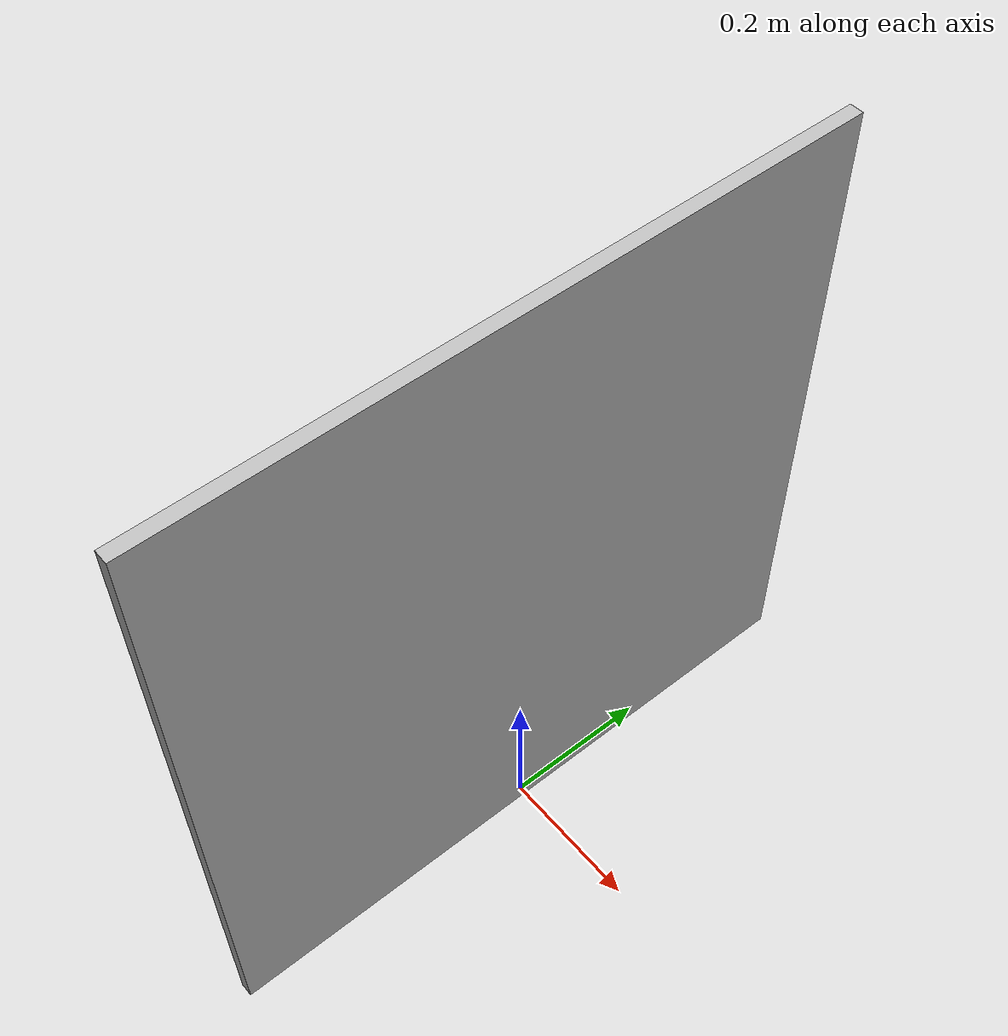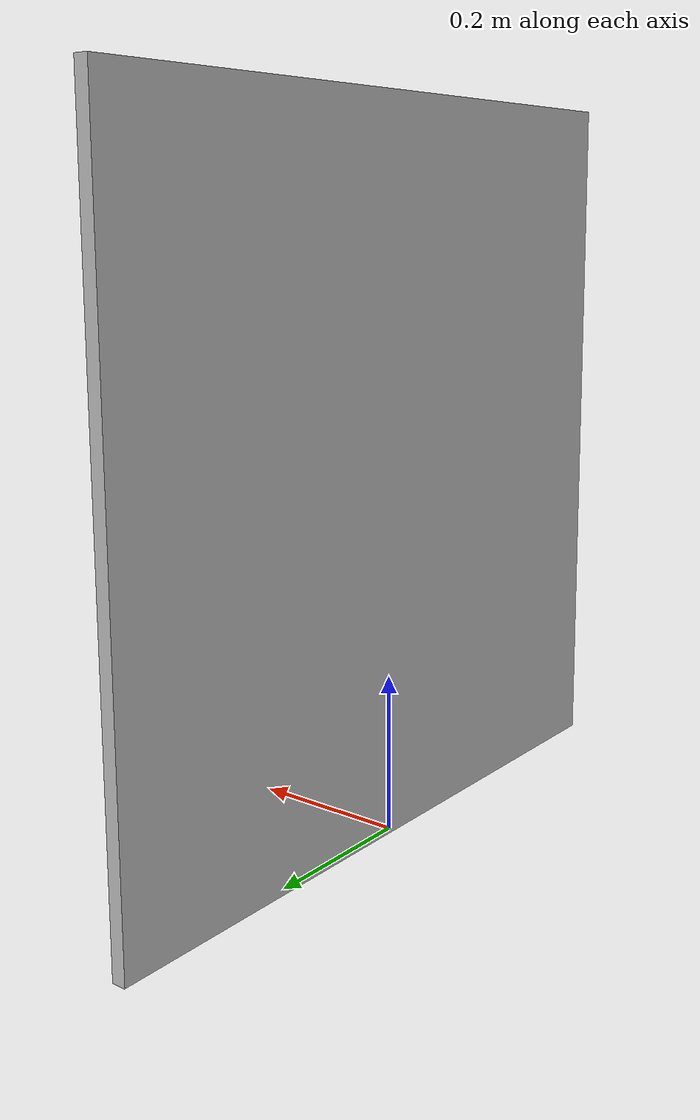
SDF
<?xml version="1.0" ?><sdf version="1.5">
  <model name="texture">
    <static>true</static>
    <link name="link">
      <visual name="visual">
        <geometry>
          <mesh>
            <uri>model://texture/meshes/texture.dae</uri>
          <scale>1.8 1.8 1.8</scale></mesh>
        </geometry>
      </visual>
    </link>
  </model>
</sdf>
